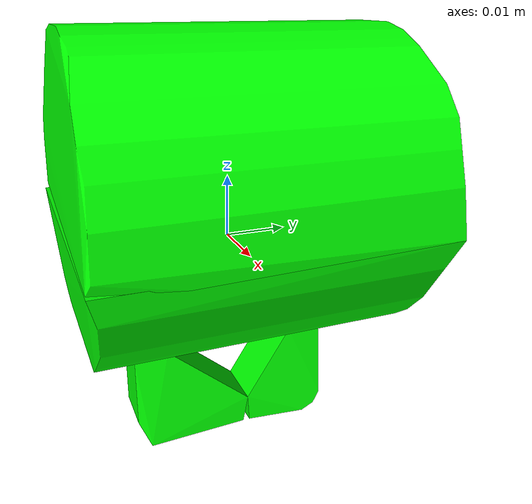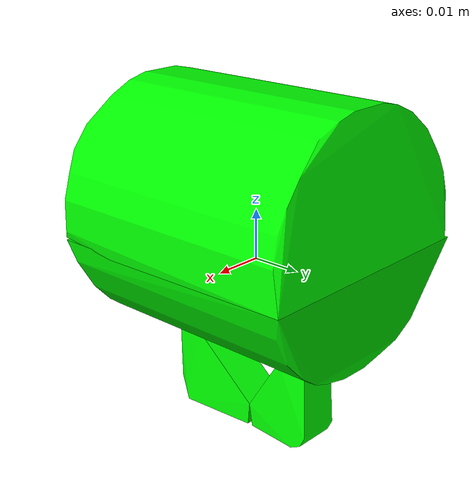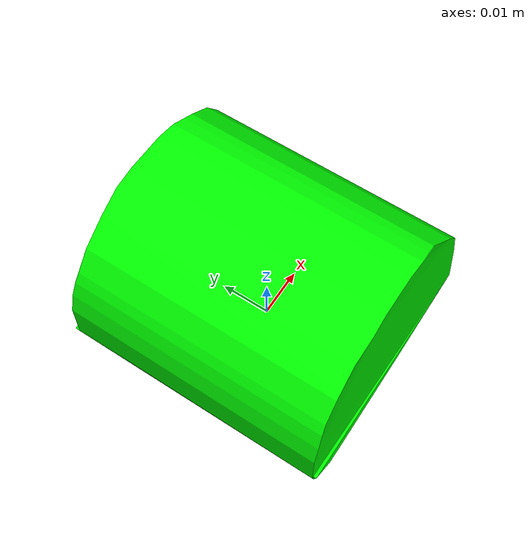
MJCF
<mujoco model="shapenet9-20">
  <asset>
    <mesh file="meshes/shapenet9-20/shapenet9-20_0.stl" name="shapenet9-20_0" scale="0.1 0.1 0.1"/>
    <mesh file="meshes/shapenet9-20/shapenet9-20_1.stl" name="shapenet9-20_1" scale="0.1 0.1 0.1"/>
    <mesh file="meshes/shapenet9-20/shapenet9-20_2.stl" name="shapenet9-20_2" scale="0.1 0.1 0.1"/>
    <mesh file="meshes/shapenet9-20/shapenet9-20_3.stl" name="shapenet9-20_3" scale="0.1 0.1 0.1"/>
  </asset>
  <worldbody>
    <body>
      <body name="collision">
        <geom pos="0 0 0" mesh="shapenet9-20_0" type="mesh" solimp="0.998 0.998 0.001" solref="0.001 1" density="100" friction="0.95 0.3 0.1" rgba="0 1 0 1" group="1" condim="4"/>
        <geom pos="0 0 0" mesh="shapenet9-20_1" type="mesh" solimp="0.998 0.998 0.001" solref="0.001 1" density="100" friction="0.95 0.3 0.1" rgba="0 1 0 1" group="1" condim="4"/>
        <geom pos="0 0 0" mesh="shapenet9-20_2" type="mesh" solimp="0.998 0.998 0.001" solref="0.001 1" density="100" friction="0.95 0.3 0.1" rgba="0 1 0 1" group="1" condim="4"/>
        <geom pos="0 0 0" mesh="shapenet9-20_3" type="mesh" solimp="0.998 0.998 0.001" solref="0.001 1" density="100" friction="0.95 0.3 0.1" rgba="0 1 0 1" group="1" condim="4"/>
      </body>
      <body name="visual">
        <geom pos="0 0 0" mesh="shapenet9-20_0" type="mesh" rgba="0 1 0 1" conaffinity="0" contype="0" group="0" mass="0.0001"/>
        <geom pos="0 0 0" mesh="shapenet9-20_1" type="mesh" rgba="0 1 0 1" conaffinity="0" contype="0" group="0" mass="0.0001"/>
        <geom pos="0 0 0" mesh="shapenet9-20_2" type="mesh" rgba="0 1 0 1" conaffinity="0" contype="0" group="0" mass="0.0001"/>
        <geom pos="0 0 0" mesh="shapenet9-20_3" type="mesh" rgba="0 1 0 1" conaffinity="0" contype="0" group="0" mass="0.0001"/>
      </body>
      <site rgba="0 0 0 0" size="0.005" pos="0 0 -0.06" name="bottom_site"/>
      <site rgba="0 0 0 0" size="0.005" pos="0 0 0.04" name="top_site"/>
      <site rgba="0 0 0 0" size="0.005" pos="0.025 0.025 0" name="horizontal_radius_site"/>
    </body>
  </worldbody>
</mujoco>
